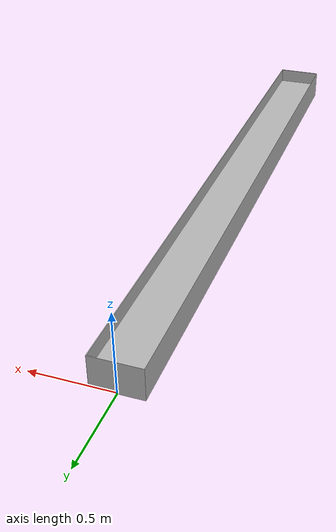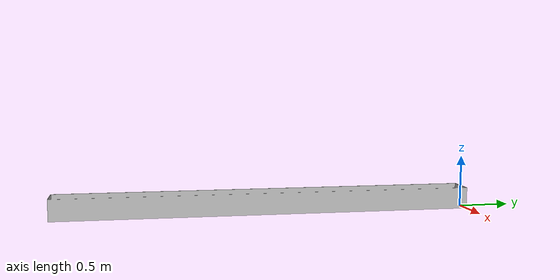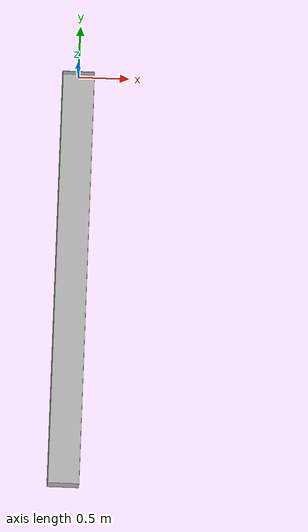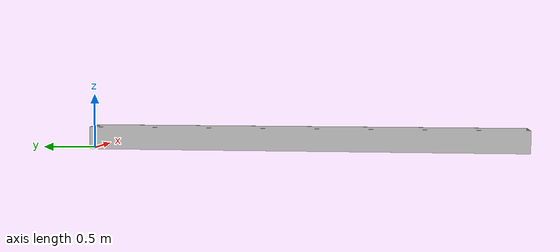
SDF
<?xml version="1.0"?>
<sdf version="1.4">
  <model name='uchannel_100'>
    <static>1</static>
    <link name='link'>
      <pose>0 0 0 0 0 0</pose>
      <collision name='collision'>
        <geometry>
          <mesh>
            <uri>model://uchannel_100/mesh/uchannel_100.dae</uri>
            <scale>1 1 1</scale>
          </mesh>
        </geometry>
      </collision>
      <visual name='visual'>
        <cast_shadows>1</cast_shadows>
        <transparency>0</transparency>
        <geometry>
          <mesh>
            <uri>model://uchannel_100/mesh/uchannel_100.dae</uri>
            <scale>1 1 1</scale>
          </mesh>
        </geometry>
      </visual>
    </link>
  </model>
</sdf>
